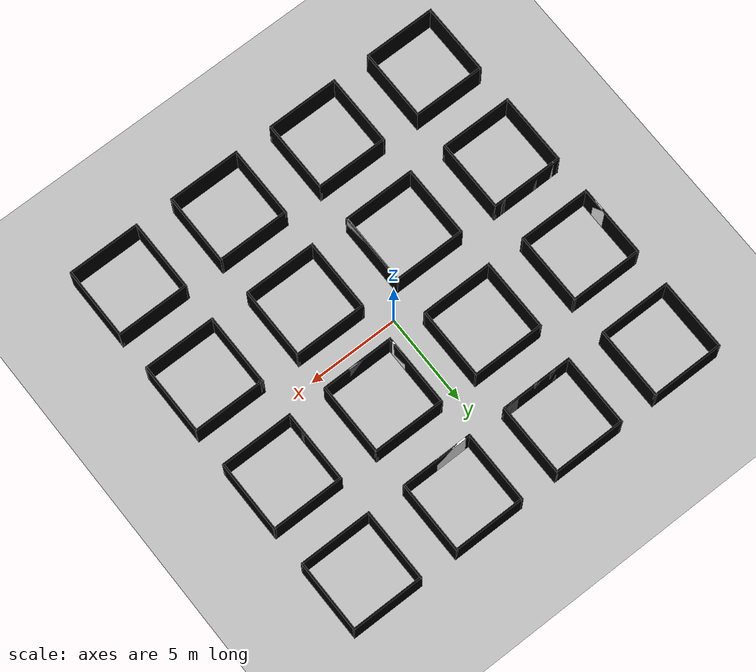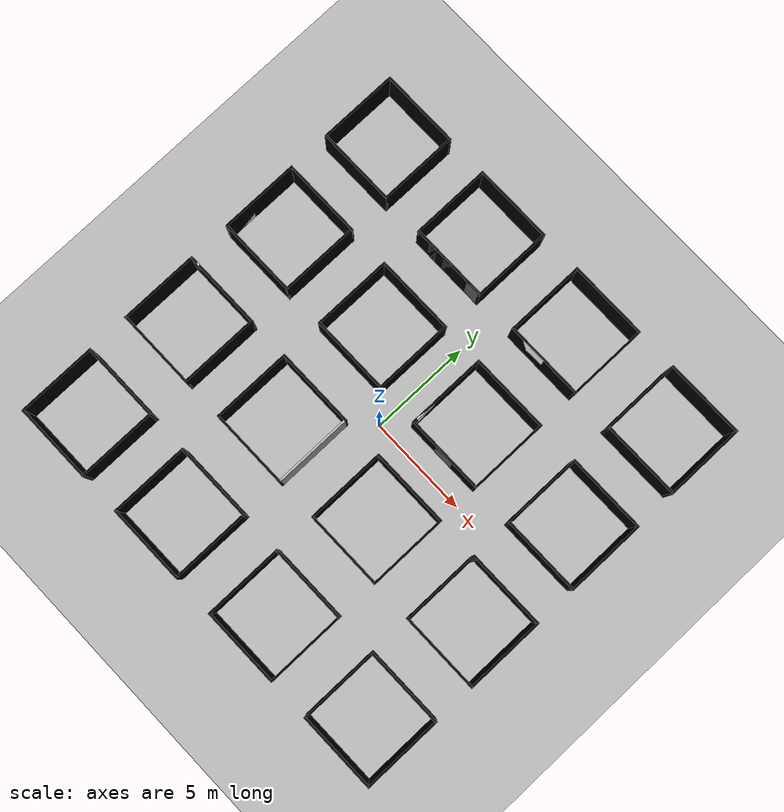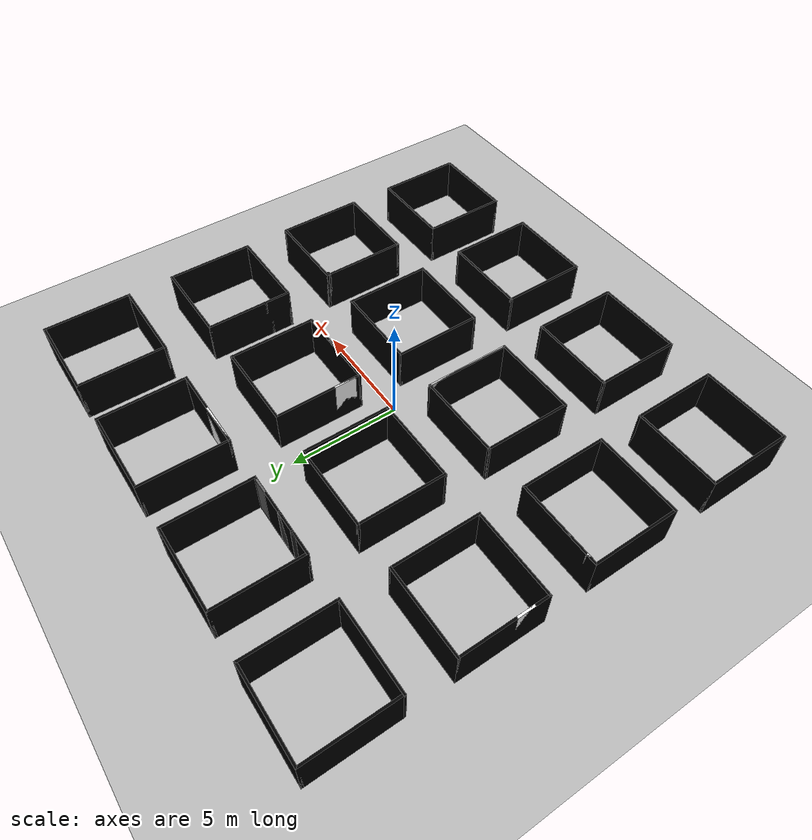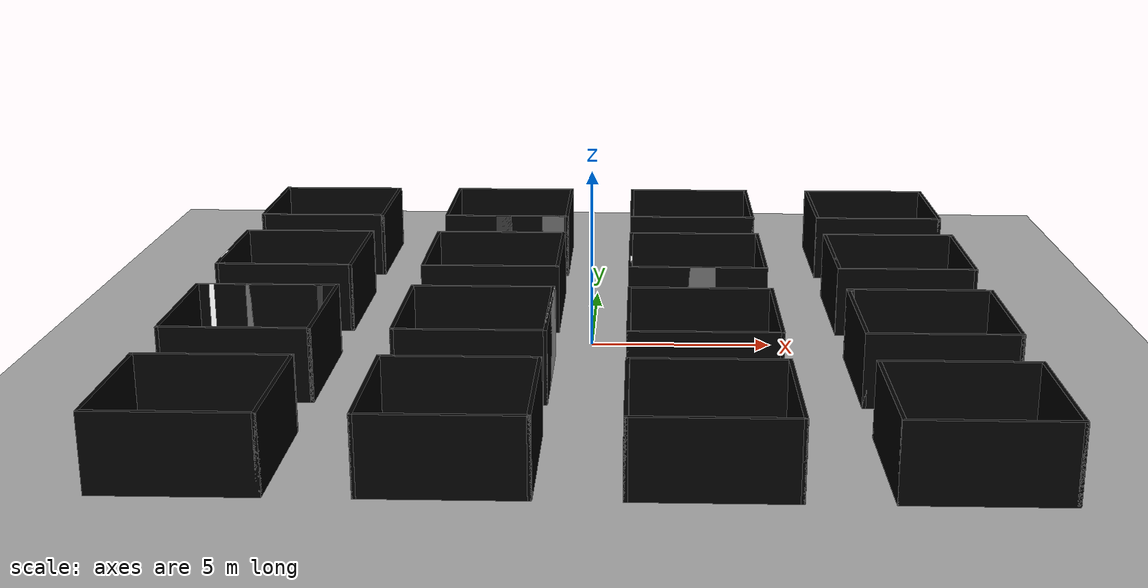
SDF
<?xml version="1.0" ?>
<sdf version="1.9">
  <world name="corridors_intensities">
    <physics name="1ms" type="ignored">
      <max_step_size>0.001</max_step_size>
      <real_time_factor>1.0</real_time_factor>
    </physics>
    <scene>
      <ambient>0.4 0.4 0.4 1</ambient>
      <background>0.7 0.7 0.7 1</background>
      <shadows>true</shadows>
    </scene>
    <model name="ground_plane">
      <static>true</static>
      <link name="link">
        <collision name="collision">
          <geometry>
            <plane>
              <normal>0 0 1</normal>
              <size>100 100</size>
            </plane>
          </geometry>
          <surface>
            <contact>
              <collide_bitmask>65535</collide_bitmask>
              <ode />
            </contact>
            <friction>
              <ode>
                <mu>100</mu>
                <mu2>50</mu2>
              </ode>
              <torsional>
                <ode />
              </torsional>
            </friction>
            <bounce />
          </surface>
          <max_contacts>10</max_contacts>
        </collision>
        <visual name="visual">
          <cast_shadows>false</cast_shadows>
          <geometry>
            <plane>
              <normal>0 0 1</normal>
              <size>100 100</size>
            </plane>
          </geometry>
          <material>
            <ambient>0.7 0.7 0.7 1</ambient>
            <diffuse>0.7 0.7 0.7 1</diffuse>
            <specular>0.1 0.1 0.1 1</specular>
          </material>
        </visual>
        <self_collide>false</self_collide>
        <enable_wind>false</enable_wind>
        <kinematic>false</kinematic>
      </link>
    </model>
    <light name="sun" type="directional">
      <cast_shadows>true</cast_shadows>
      <pose>0 0 10 0 0 0</pose>
      <diffuse>0.8 0.8 0.8 1</diffuse>
      <specular>0.2 0.2 0.2 1</specular>
      <attenuation>
        <range>1000</range>
        <constant>0.9</constant>
        <linear>0.01</linear>
        <quadratic>0.001</quadratic>
      </attenuation>
      <direction>-0.5 0.1 -0.9</direction>
    </light>
    <model name="wall_D_3_1">
      <static>true</static>
      <pose>3 1.05 1 0 0 0</pose>
      <link name="link">
        <collision name="wall">
          <geometry>
            <box>
              <size>4.0 0.10 2</size>
            </box>
          </geometry>
        </collision>
        <visual name="vis">
          <geometry>
            <box>
              <size>4.0 0.10 2</size>
            </box>
          </geometry>
          <material>
            <ambient>0.0 0.0 0.0 1</ambient>
            <diffuse>0.0 0.0 0.0 1</diffuse>
          </material>
        </visual>
      </link>
    </model>
    <model name="wall_I_3_5">
      <static>true</static>
      <pose>3 4.95 1 0 0 0</pose>
      <link name="link">
        <collision name="wall">
          <geometry>
            <box>
              <size>4.0 0.10 2</size>
            </box>
          </geometry>
        </collision>
        <visual name="vis">
          <geometry>
            <box>
              <size>4.0 0.10 2</size>
            </box>
          </geometry>
          <material>
            <ambient>0.0 0.0 0.0 1</ambient>
            <diffuse>0.0 0.0 0.0 1</diffuse>
          </material>
        </visual>
      </link>
    </model>
    <model name="wall_A_5_3">
      <static>true</static>
      <pose>4.95 3 1 0 0 0</pose>
      <link name="link">
        <collision name="wall">
          <geometry>
            <box>
              <size>0.10 4.0 2</size>
            </box>
          </geometry>
        </collision>
        <visual name="vis">
          <geometry>
            <box>
              <size>0.10 4.0 2</size>
            </box>
          </geometry>
          <material>
            <ambient>0.0 0.0 0.0 1</ambient>
            <diffuse>0.0 0.0 0.0 1</diffuse>
          </material>
        </visual>
      </link>
    </model>
    <model name="wall_B_1_3">
      <static>true</static>
      <pose>1.05 3 1 0 0 0</pose>
      <link name="link">
        <collision name="wall">
          <geometry>
            <box>
              <size>0.10 4.0 2</size>
            </box>
          </geometry>
        </collision>
        <visual name="vis">
          <geometry>
            <box>
              <size>0.10 4.0 2</size>
            </box>
          </geometry>
          <material>
            <ambient>0.0 0.0 0.0 1</ambient>
            <diffuse>0.0 0.0 0.0 1</diffuse>
          </material>
        </visual>
      </link>
    </model>
    <model name="wall_D_3_-5">
      <static>true</static>
      <pose>3 -4.95 1 0 0 0</pose>
      <link name="link">
        <collision name="wall">
          <geometry>
            <box>
              <size>4.0 0.10 2</size>
            </box>
          </geometry>
        </collision>
        <visual name="vis">
          <geometry>
            <box>
              <size>4.0 0.10 2</size>
            </box>
          </geometry>
          <material>
            <ambient>0.0 0.0 0.0 1</ambient>
            <diffuse>0.0 0.0 0.0 1</diffuse>
          </material>
        </visual>
      </link>
    </model>
    <model name="wall_I_3_-1">
      <static>true</static>
      <pose>3 -1.05 1 0 0 0</pose>
      <link name="link">
        <collision name="wall">
          <geometry>
            <box>
              <size>4.0 0.10 2</size>
            </box>
          </geometry>
        </collision>
        <visual name="vis">
          <geometry>
            <box>
              <size>4.0 0.10 2</size>
            </box>
          </geometry>
          <material>
            <ambient>0.0 0.0 0.0 1</ambient>
            <diffuse>0.0 0.0 0.0 1</diffuse>
          </material>
        </visual>
      </link>
    </model>
    <model name="wall_A_5_-3">
      <static>true</static>
      <pose>4.95 -3 1 0 0 0</pose>
      <link name="link">
        <collision name="wall">
          <geometry>
            <box>
              <size>0.10 4.0 2</size>
            </box>
          </geometry>
        </collision>
        <visual name="vis">
          <geometry>
            <box>
              <size>0.10 4.0 2</size>
            </box>
          </geometry>
          <material>
            <ambient>0.0 0.0 0.0 1</ambient>
            <diffuse>0.0 0.0 0.0 1</diffuse>
          </material>
        </visual>
      </link>
    </model>
    <model name="wall_B_1_-3">
      <static>true</static>
      <pose>1.05 -3 1 0 0 0</pose>
      <link name="link">
        <collision name="wall">
          <geometry>
            <box>
              <size>0.10 4.0 2</size>
            </box>
          </geometry>
        </collision>
        <visual name="vis">
          <geometry>
            <box>
              <size>0.10 4.0 2</size>
            </box>
          </geometry>
          <material>
            <ambient>0.0 0.0 0.0 1</ambient>
            <diffuse>0.0 0.0 0.0 1</diffuse>
          </material>
        </visual>
      </link>
    </model>
    <model name="wall_D_-3_-5">
      <static>true</static>
      <pose>-3 -4.95 1 0 0 0</pose>
      <link name="link">
        <collision name="wall">
          <geometry>
            <box>
              <size>4.0 0.10 2</size>
            </box>
          </geometry>
        </collision>
        <visual name="vis">
          <geometry>
            <box>
              <size>4.0 0.10 2</size>
            </box>
          </geometry>
          <material>
            <ambient>0.0 0.0 0.0 1</ambient>
            <diffuse>0.0 0.0 0.0 1</diffuse>
          </material>
        </visual>
      </link>
    </model>
    <model name="wall_I_-3_-1">
      <static>true</static>
      <pose>-3 -1.05 1 0 0 0</pose>
      <link name="link">
        <collision name="wall">
          <geometry>
            <box>
              <size>4.0 0.10 2</size>
            </box>
          </geometry>
        </collision>
        <visual name="vis">
          <geometry>
            <box>
              <size>4.0 0.10 2</size>
            </box>
          </geometry>
          <material>
            <ambient>0.0 0.0 0.0 1</ambient>
            <diffuse>0.0 0.0 0.0 1</diffuse>
          </material>
        </visual>
      </link>
    </model>
    <model name="wall_A_-5_-3">
      <static>true</static>
      <pose>-4.95 -3 1 0 0 0</pose>
      <link name="link">
        <collision name="wall">
          <geometry>
            <box>
              <size>0.10 4.0 2</size>
            </box>
          </geometry>
        </collision>
        <visual name="vis">
          <geometry>
            <box>
              <size>0.10 4.0 2</size>
            </box>
          </geometry>
          <material>
            <ambient>0.0 0.0 0.0 1</ambient>
            <diffuse>0.0 0.0 0.0 1</diffuse>
          </material>
        </visual>
      </link>
    </model>
    <model name="wall_B_-1_-3">
      <static>true</static>
      <pose>-1.05 -3 1 0 0 0</pose>
      <link name="link">
        <collision name="wall">
          <geometry>
            <box>
              <size>0.10 4.0 2</size>
            </box>
          </geometry>
        </collision>
        <visual name="vis">
          <geometry>
            <box>
              <size>0.10 4.0 2</size>
            </box>
          </geometry>
          <material>
            <ambient>0.0 0.0 0.0 1</ambient>
            <diffuse>0.0 0.0 0.0 1</diffuse>
          </material>
        </visual>
      </link>
    </model>
    <model name="wall_D_-3_5">
      <static>true</static>
      <pose>-3 4.95 1 0 0 0</pose>
      <link name="link">
        <collision name="wall">
          <geometry>
            <box>
              <size>4.0 0.10 2</size>
            </box>
          </geometry>
        </collision>
        <visual name="vis">
          <geometry>
            <box>
              <size>4.0 0.10 2</size>
            </box>
          </geometry>
          <material>
            <ambient>0.0 0.0 0.0 1</ambient>
            <diffuse>0.0 0.0 0.0 1</diffuse>
          </material>
        </visual>
      </link>
    </model>
    <model name="wall_I_-3_1">
      <static>true</static>
      <pose>-3 1.05 1 0 0 0</pose>
      <link name="link">
        <collision name="wall">
          <geometry>
            <box>
              <size>4.0 0.10 2</size>
            </box>
          </geometry>
        </collision>
        <visual name="vis">
          <geometry>
            <box>
              <size>4.0 0.10 2</size>
            </box>
          </geometry>
          <material>
            <ambient>0.0 0.0 0.0 1</ambient>
            <diffuse>0.0 0.0 0.0 1</diffuse>
          </material>
        </visual>
      </link>
    </model>
    <model name="wall_A_-5_3">
      <static>true</static>
      <pose>-4.95 3 1 0 0 0</pose>
      <link name="link">
        <collision name="wall">
          <geometry>
            <box>
              <size>0.10 4.0 2</size>
            </box>
          </geometry>
        </collision>
        <visual name="vis">
          <geometry>
            <box>
              <size>0.10 4.0 2</size>
            </box>
          </geometry>
          <material>
            <ambient>0.0 0.0 0.0 1</ambient>
            <diffuse>0.0 0.0 0.0 1</diffuse>
          </material>
        </visual>
      </link>
    </model>
    <model name="wall_B_-1_3">
      <static>true</static>
      <pose>-1.05 3 1 0 0 0</pose>
      <link name="link">
        <collision name="wall">
          <geometry>
            <box>
              <size>0.10 4.0 2</size>
            </box>
          </geometry>
        </collision>
        <visual name="vis">
          <geometry>
            <box>
              <size>0.10 4.0 2</size>
            </box>
          </geometry>
          <material>
            <ambient>0.0 0.0 0.0 1</ambient>
            <diffuse>0.0 0.0 0.0 1</diffuse>
          </material>
        </visual>
      </link>
    </model>
    <model name="wall_D_-3_7">
      <static>true</static>
      <pose>-3 7.05 1 0 0 0</pose>
      <link name="link">
        <collision name="wall">
          <geometry>
            <box>
              <size>4.0 0.10 2</size>
            </box>
          </geometry>
        </collision>
        <visual name="vis">
          <geometry>
            <box>
              <size>4.0 0.10 2</size>
            </box>
          </geometry>
          <material>
            <ambient>0.0 0.0 0.0 1</ambient>
            <diffuse>0.0 0.0 0.0 1</diffuse>
          </material>
        </visual>
      </link>
    </model>
    <model name="wall_I_-3_11">
      <static>true</static>
      <pose>-3 10.95 1 0 0 0</pose>
      <link name="link">
        <collision name="wall">
          <geometry>
            <box>
              <size>4.0 0.10 2</size>
            </box>
          </geometry>
        </collision>
        <visual name="vis">
          <geometry>
            <box>
              <size>4.0 0.10 2</size>
            </box>
          </geometry>
          <material>
            <ambient>0.0 0.0 0.0 1</ambient>
            <diffuse>0.0 0.0 0.0 1</diffuse>
          </material>
        </visual>
      </link>
    </model>
    <model name="wall_A_-5_9">
      <static>true</static>
      <pose>-4.95 9 1 0 0 0</pose>
      <link name="link">
        <collision name="wall">
          <geometry>
            <box>
              <size>0.10 4.0 2</size>
            </box>
          </geometry>
        </collision>
        <visual name="vis">
          <geometry>
            <box>
              <size>0.10 4.0 2</size>
            </box>
          </geometry>
          <material>
            <ambient>0.0 0.0 0.0 1</ambient>
            <diffuse>0.0 0.0 0.0 1</diffuse>
          </material>
        </visual>
      </link>
    </model>
    <model name="wall_B_-1_9">
      <static>true</static>
      <pose>-1.05 9 1 0 0 0</pose>
      <link name="link">
        <collision name="wall">
          <geometry>
            <box>
              <size>0.10 4.0 2</size>
            </box>
          </geometry>
        </collision>
        <visual name="vis">
          <geometry>
            <box>
              <size>0.10 4.0 2</size>
            </box>
          </geometry>
          <material>
            <ambient>0.0 0.0 0.0 1</ambient>
            <diffuse>0.0 0.0 0.0 1</diffuse>
          </material>
        </visual>
      </link>
    </model>
    <model name="wall_D_3_7">
      <static>true</static>
      <pose>3 7.05 1 0 0 0</pose>
      <link name="link">
        <collision name="wall">
          <geometry>
            <box>
              <size>4.0 0.10 2</size>
            </box>
          </geometry>
        </collision>
        <visual name="vis">
          <geometry>
            <box>
              <size>4.0 0.10 2</size>
            </box>
          </geometry>
          <material>
            <ambient>0.0 0.0 0.0 1</ambient>
            <diffuse>0.0 0.0 0.0 1</diffuse>
          </material>
        </visual>
      </link>
    </model>
    <model name="wall_I_3_11">
      <static>true</static>
      <pose>3 10.95 1 0 0 0</pose>
      <link name="link">
        <collision name="wall">
          <geometry>
            <box>
              <size>4.0 0.10 2</size>
            </box>
          </geometry>
        </collision>
        <visual name="vis">
          <geometry>
            <box>
              <size>4.0 0.10 2</size>
            </box>
          </geometry>
          <material>
            <ambient>0.0 0.0 0.0 1</ambient>
            <diffuse>0.0 0.0 0.0 1</diffuse>
          </material>
        </visual>
      </link>
    </model>
    <model name="wall_A_5_9">
      <static>true</static>
      <pose>4.95 9 1 0 0 0</pose>
      <link name="link">
        <collision name="wall">
          <geometry>
            <box>
              <size>0.10 4.0 2</size>
            </box>
          </geometry>
        </collision>
        <visual name="vis">
          <geometry>
            <box>
              <size>0.10 4.0 2</size>
            </box>
          </geometry>
          <material>
            <ambient>0.0 0.0 0.0 1</ambient>
            <diffuse>0.0 0.0 0.0 1</diffuse>
          </material>
        </visual>
      </link>
    </model>
    <model name="wall_B_1_9">
      <static>true</static>
      <pose>1.05 9 1 0 0 0</pose>
      <link name="link">
        <collision name="wall">
          <geometry>
            <box>
              <size>0.10 4.0 2</size>
            </box>
          </geometry>
        </collision>
        <visual name="vis">
          <geometry>
            <box>
              <size>0.10 4.0 2</size>
            </box>
          </geometry>
          <material>
            <ambient>0.0 0.0 0.0 1</ambient>
            <diffuse>0.0 0.0 0.0 1</diffuse>
          </material>
        </visual>
      </link>
    </model>
    <model name="wall_D_9_7">
      <static>true</static>
      <pose>9 7.05 1 0 0 0</pose>
      <link name="link">
        <collision name="wall">
          <geometry>
            <box>
              <size>4.0 0.10 2</size>
            </box>
          </geometry>
        </collision>
        <visual name="vis">
          <geometry>
            <box>
              <size>4.0 0.10 2</size>
            </box>
          </geometry>
          <material>
            <ambient>0.0 0.0 0.0 1</ambient>
            <diffuse>0.0 0.0 0.0 1</diffuse>
          </material>
        </visual>
      </link>
    </model>
    <model name="wall_I_9_11">
      <static>true</static>
      <pose>9 10.95 1 0 0 0</pose>
      <link name="link">
        <collision name="wall">
          <geometry>
            <box>
              <size>4.0 0.10 2</size>
            </box>
          </geometry>
        </collision>
        <visual name="vis">
          <geometry>
            <box>
              <size>4.0 0.10 2</size>
            </box>
          </geometry>
          <material>
            <ambient>0.0 0.0 0.0 1</ambient>
            <diffuse>0.0 0.0 0.0 1</diffuse>
          </material>
        </visual>
      </link>
    </model>
    <model name="wall_A_11_9">
      <static>true</static>
      <pose>10.95 9 1 0 0 0</pose>
      <link name="link">
        <collision name="wall">
          <geometry>
            <box>
              <size>0.10 4.0 2</size>
            </box>
          </geometry>
        </collision>
        <visual name="vis">
          <geometry>
            <box>
              <size>0.10 4.0 2</size>
            </box>
          </geometry>
          <material>
            <ambient>0.0 0.0 0.0 1</ambient>
            <diffuse>0.0 0.0 0.0 1</diffuse>
          </material>
        </visual>
      </link>
    </model>
    <model name="wall_B_7_9">
      <static>true</static>
      <pose>7.05 9 1 0 0 0</pose>
      <link name="link">
        <collision name="wall">
          <geometry>
            <box>
              <size>0.10 4.0 2</size>
            </box>
          </geometry>
        </collision>
        <visual name="vis">
          <geometry>
            <box>
              <size>0.10 4.0 2</size>
            </box>
          </geometry>
          <material>
            <ambient>0.0 0.0 0.0 1</ambient>
            <diffuse>0.0 0.0 0.0 1</diffuse>
          </material>
        </visual>
      </link>
    </model>
    <model name="wall_D_9_1">
      <static>true</static>
      <pose>9 1.05 1 0 0 0</pose>
      <link name="link">
        <collision name="wall">
          <geometry>
            <box>
              <size>4.0 0.10 2</size>
            </box>
          </geometry>
        </collision>
        <visual name="vis">
          <geometry>
            <box>
              <size>4.0 0.10 2</size>
            </box>
          </geometry>
          <material>
            <ambient>0.0 0.0 0.0 1</ambient>
            <diffuse>0.0 0.0 0.0 1</diffuse>
          </material>
        </visual>
      </link>
    </model>
    <model name="wall_I_9_5">
      <static>true</static>
      <pose>9 4.95 1 0 0 0</pose>
      <link name="link">
        <collision name="wall">
          <geometry>
            <box>
              <size>4.0 0.10 2</size>
            </box>
          </geometry>
        </collision>
        <visual name="vis">
          <geometry>
            <box>
              <size>4.0 0.10 2</size>
            </box>
          </geometry>
          <material>
            <ambient>0.0 0.0 0.0 1</ambient>
            <diffuse>0.0 0.0 0.0 1</diffuse>
          </material>
        </visual>
      </link>
    </model>
    <model name="wall_A_11_3">
      <static>true</static>
      <pose>10.95 3 1 0 0 0</pose>
      <link name="link">
        <collision name="wall">
          <geometry>
            <box>
              <size>0.10 4.0 2</size>
            </box>
          </geometry>
        </collision>
        <visual name="vis">
          <geometry>
            <box>
              <size>0.10 4.0 2</size>
            </box>
          </geometry>
          <material>
            <ambient>0.0 0.0 0.0 1</ambient>
            <diffuse>0.0 0.0 0.0 1</diffuse>
          </material>
        </visual>
      </link>
    </model>
    <model name="wall_B_7_3">
      <static>true</static>
      <pose>7.05 3 1 0 0 0</pose>
      <link name="link">
        <collision name="wall">
          <geometry>
            <box>
              <size>0.10 4.0 2</size>
            </box>
          </geometry>
        </collision>
        <visual name="vis">
          <geometry>
            <box>
              <size>0.10 4.0 2</size>
            </box>
          </geometry>
          <material>
            <ambient>0.0 0.0 0.0 1</ambient>
            <diffuse>0.0 0.0 0.0 1</diffuse>
          </material>
        </visual>
      </link>
    </model>
    <model name="wall_D_9_-5">
      <static>true</static>
      <pose>9 -4.95 1 0 0 0</pose>
      <link name="link">
        <collision name="wall">
          <geometry>
            <box>
              <size>4.0 0.10 2</size>
            </box>
          </geometry>
        </collision>
        <visual name="vis">
          <geometry>
            <box>
              <size>4.0 0.10 2</size>
            </box>
          </geometry>
          <material>
            <ambient>0.0 0.0 0.0 1</ambient>
            <diffuse>0.0 0.0 0.0 1</diffuse>
          </material>
        </visual>
      </link>
    </model>
    <model name="wall_I_9_-1">
      <static>true</static>
      <pose>9 -1.05 1 0 0 0</pose>
      <link name="link">
        <collision name="wall">
          <geometry>
            <box>
              <size>4.0 0.10 2</size>
            </box>
          </geometry>
        </collision>
        <visual name="vis">
          <geometry>
            <box>
              <size>4.0 0.10 2</size>
            </box>
          </geometry>
          <material>
            <ambient>0.0 0.0 0.0 1</ambient>
            <diffuse>0.0 0.0 0.0 1</diffuse>
          </material>
        </visual>
      </link>
    </model>
    <model name="wall_A_11_-3">
      <static>true</static>
      <pose>10.95 -3 1 0 0 0</pose>
      <link name="link">
        <collision name="wall">
          <geometry>
            <box>
              <size>0.10 4.0 2</size>
            </box>
          </geometry>
        </collision>
        <visual name="vis">
          <geometry>
            <box>
              <size>0.10 4.0 2</size>
            </box>
          </geometry>
          <material>
            <ambient>0.0 0.0 0.0 1</ambient>
            <diffuse>0.0 0.0 0.0 1</diffuse>
          </material>
        </visual>
      </link>
    </model>
    <model name="wall_B_7_-3">
      <static>true</static>
      <pose>7.05 -3 1 0 0 0</pose>
      <link name="link">
        <collision name="wall">
          <geometry>
            <box>
              <size>0.10 4.0 2</size>
            </box>
          </geometry>
        </collision>
        <visual name="vis">
          <geometry>
            <box>
              <size>0.10 4.0 2</size>
            </box>
          </geometry>
          <material>
            <ambient>0.0 0.0 0.0 1</ambient>
            <diffuse>0.0 0.0 0.0 1</diffuse>
          </material>
        </visual>
      </link>
    </model>
    <model name="wall_D_9_-11">
      <static>true</static>
      <pose>9 -10.95 1 0 0 0</pose>
      <link name="link">
        <collision name="wall">
          <geometry>
            <box>
              <size>4.0 0.10 2</size>
            </box>
          </geometry>
        </collision>
        <visual name="vis">
          <geometry>
            <box>
              <size>4.0 0.10 2</size>
            </box>
          </geometry>
          <material>
            <ambient>0.0 0.0 0.0 1</ambient>
            <diffuse>0.0 0.0 0.0 1</diffuse>
          </material>
        </visual>
      </link>
    </model>
    <model name="wall_I_9_-7">
      <static>true</static>
      <pose>9 -7.05 1 0 0 0</pose>
      <link name="link">
        <collision name="wall">
          <geometry>
            <box>
              <size>4.0 0.10 2</size>
            </box>
          </geometry>
        </collision>
        <visual name="vis">
          <geometry>
            <box>
              <size>4.0 0.10 2</size>
            </box>
          </geometry>
          <material>
            <ambient>0.0 0.0 0.0 1</ambient>
            <diffuse>0.0 0.0 0.0 1</diffuse>
          </material>
        </visual>
      </link>
    </model>
    <model name="wall_A_11_-9">
      <static>true</static>
      <pose>10.95 -9 1 0 0 0</pose>
      <link name="link">
        <collision name="wall">
          <geometry>
            <box>
              <size>0.10 4.0 2</size>
            </box>
          </geometry>
        </collision>
        <visual name="vis">
          <geometry>
            <box>
              <size>0.10 4.0 2</size>
            </box>
          </geometry>
          <material>
            <ambient>0.0 0.0 0.0 1</ambient>
            <diffuse>0.0 0.0 0.0 1</diffuse>
          </material>
        </visual>
      </link>
    </model>
    <model name="wall_B_7_-9">
      <static>true</static>
      <pose>7.05 -9 1 0 0 0</pose>
      <link name="link">
        <collision name="wall">
          <geometry>
            <box>
              <size>0.10 4.0 2</size>
            </box>
          </geometry>
        </collision>
        <visual name="vis">
          <geometry>
            <box>
              <size>0.10 4.0 2</size>
            </box>
          </geometry>
          <material>
            <ambient>0.0 0.0 0.0 1</ambient>
            <diffuse>0.0 0.0 0.0 1</diffuse>
          </material>
        </visual>
      </link>
    </model>
    <model name="wall_D_3_-11">
      <static>true</static>
      <pose>3 -10.95 1 0 0 0</pose>
      <link name="link">
        <collision name="wall">
          <geometry>
            <box>
              <size>4.0 0.10 2</size>
            </box>
          </geometry>
        </collision>
        <visual name="vis">
          <geometry>
            <box>
              <size>4.0 0.10 2</size>
            </box>
          </geometry>
          <material>
            <ambient>0.0 0.0 0.0 1</ambient>
            <diffuse>0.0 0.0 0.0 1</diffuse>
          </material>
        </visual>
      </link>
    </model>
    <model name="wall_I_3_-7">
      <static>true</static>
      <pose>3 -7.05 1 0 0 0</pose>
      <link name="link">
        <collision name="wall">
          <geometry>
            <box>
              <size>4.0 0.10 2</size>
            </box>
          </geometry>
        </collision>
        <visual name="vis">
          <geometry>
            <box>
              <size>4.0 0.10 2</size>
            </box>
          </geometry>
          <material>
            <ambient>0.0 0.0 0.0 1</ambient>
            <diffuse>0.0 0.0 0.0 1</diffuse>
          </material>
        </visual>
      </link>
    </model>
    <model name="wall_A_5_-9">
      <static>true</static>
      <pose>4.95 -9 1 0 0 0</pose>
      <link name="link">
        <collision name="wall">
          <geometry>
            <box>
              <size>0.10 4.0 2</size>
            </box>
          </geometry>
        </collision>
        <visual name="vis">
          <geometry>
            <box>
              <size>0.10 4.0 2</size>
            </box>
          </geometry>
          <material>
            <ambient>0.0 0.0 0.0 1</ambient>
            <diffuse>0.0 0.0 0.0 1</diffuse>
          </material>
        </visual>
      </link>
    </model>
    <model name="wall_B_1_-9">
      <static>true</static>
      <pose>1.05 -9 1 0 0 0</pose>
      <link name="link">
        <collision name="wall">
          <geometry>
            <box>
              <size>0.10 4.0 2</size>
            </box>
          </geometry>
        </collision>
        <visual name="vis">
          <geometry>
            <box>
              <size>0.10 4.0 2</size>
            </box>
          </geometry>
          <material>
            <ambient>0.0 0.0 0.0 1</ambient>
            <diffuse>0.0 0.0 0.0 1</diffuse>
          </material>
        </visual>
      </link>
    </model>
    <model name="wall_D_-3_-11">
      <static>true</static>
      <pose>-3 -10.95 1 0 0 0</pose>
      <link name="link">
        <collision name="wall">
          <geometry>
            <box>
              <size>4.0 0.10 2</size>
            </box>
          </geometry>
        </collision>
        <visual name="vis">
          <geometry>
            <box>
              <size>4.0 0.10 2</size>
            </box>
          </geometry>
          <material>
            <ambient>0.0 0.0 0.0 1</ambient>
            <diffuse>0.0 0.0 0.0 1</diffuse>
          </material>
        </visual>
      </link>
    </model>
    <model name="wall_I_-3_-7">
      <static>true</static>
      <pose>-3 -7.05 1 0 0 0</pose>
      <link name="link">
        <collision name="wall">
          <geometry>
            <box>
              <size>4.0 0.10 2</size>
            </box>
          </geometry>
        </collision>
        <visual name="vis">
          <geometry>
            <box>
              <size>4.0 0.10 2</size>
            </box>
          </geometry>
          <material>
            <ambient>0.0 0.0 0.0 1</ambient>
            <diffuse>0.0 0.0 0.0 1</diffuse>
          </material>
        </visual>
      </link>
    </model>
    <model name="wall_A_-5_-9">
      <static>true</static>
      <pose>-4.95 -9 1 0 0 0</pose>
      <link name="link">
        <collision name="wall">
          <geometry>
            <box>
              <size>0.10 4.0 2</size>
            </box>
          </geometry>
        </collision>
        <visual name="vis">
          <geometry>
            <box>
              <size>0.10 4.0 2</size>
            </box>
          </geometry>
          <material>
            <ambient>0.0 0.0 0.0 1</ambient>
            <diffuse>0.0 0.0 0.0 1</diffuse>
          </material>
        </visual>
      </link>
    </model>
    <model name="wall_B_-1_-9">
      <static>true</static>
      <pose>-1.05 -9 1 0 0 0</pose>
      <link name="link">
        <collision name="wall">
          <geometry>
            <box>
              <size>0.10 4.0 2</size>
            </box>
          </geometry>
        </collision>
        <visual name="vis">
          <geometry>
            <box>
              <size>0.10 4.0 2</size>
            </box>
          </geometry>
          <material>
            <ambient>0.0 0.0 0.0 1</ambient>
            <diffuse>0.0 0.0 0.0 1</diffuse>
          </material>
        </visual>
      </link>
    </model>
    <model name="wall_D_-9_-11">
      <static>true</static>
      <pose>-9 -10.95 1 0 0 0</pose>
      <link name="link">
        <collision name="wall">
          <geometry>
            <box>
              <size>4.0 0.10 2</size>
            </box>
          </geometry>
        </collision>
        <visual name="vis">
          <geometry>
            <box>
              <size>4.0 0.10 2</size>
            </box>
          </geometry>
          <material>
            <ambient>0.0 0.0 0.0 1</ambient>
            <diffuse>0.0 0.0 0.0 1</diffuse>
          </material>
        </visual>
      </link>
    </model>
    <model name="wall_I_-9_-7">
      <static>true</static>
      <pose>-9 -7.05 1 0 0 0</pose>
      <link name="link">
        <collision name="wall">
          <geometry>
            <box>
              <size>4.0 0.10 2</size>
            </box>
          </geometry>
        </collision>
        <visual name="vis">
          <geometry>
            <box>
              <size>4.0 0.10 2</size>
            </box>
          </geometry>
          <material>
            <ambient>0.0 0.0 0.0 1</ambient>
            <diffuse>0.0 0.0 0.0 1</diffuse>
          </material>
        </visual>
      </link>
    </model>
    <model name="wall_A_-7_-9">
      <static>true</static>
      <pose>-7.05 -9 1 0 0 0</pose>
      <link name="link">
        <collision name="wall">
          <geometry>
            <box>
              <size>0.10 4.0 2</size>
            </box>
          </geometry>
        </collision>
        <visual name="vis">
          <geometry>
            <box>
              <size>0.10 4.0 2</size>
            </box>
          </geometry>
          <material>
            <ambient>0.0 0.0 0.0 1</ambient>
            <diffuse>0.0 0.0 0.0 1</diffuse>
          </material>
        </visual>
      </link>
    </model>
    <model name="wall_B_-11_-9">
      <static>true</static>
      <pose>-10.95 -9 1 0 0 0</pose>
      <link name="link">
        <collision name="wall">
          <geometry>
            <box>
              <size>0.10 4.0 2</size>
            </box>
          </geometry>
        </collision>
        <visual name="vis">
          <geometry>
            <box>
              <size>0.10 4.0 2</size>
            </box>
          </geometry>
          <material>
            <ambient>0.0 0.0 0.0 1</ambient>
            <diffuse>0.0 0.0 0.0 1</diffuse>
          </material>
        </visual>
      </link>
    </model>
    <model name="wall_D_-9_-5">
      <static>true</static>
      <pose>-9 -4.95 1 0 0 0</pose>
      <link name="link">
        <collision name="wall">
          <geometry>
            <box>
              <size>4.0 0.10 2</size>
            </box>
          </geometry>
        </collision>
        <visual name="vis">
          <geometry>
            <box>
              <size>4.0 0.10 2</size>
            </box>
          </geometry>
          <material>
            <ambient>0.0 0.0 0.0 1</ambient>
            <diffuse>0.0 0.0 0.0 1</diffuse>
          </material>
        </visual>
      </link>
    </model>
    <model name="wall_I_-9_-1">
      <static>true</static>
      <pose>-9 -1.05 1 0 0 0</pose>
      <link name="link">
        <collision name="wall">
          <geometry>
            <box>
              <size>4.0 0.10 2</size>
            </box>
          </geometry>
        </collision>
        <visual name="vis">
          <geometry>
            <box>
              <size>4.0 0.10 2</size>
            </box>
          </geometry>
          <material>
            <ambient>0.0 0.0 0.0 1</ambient>
            <diffuse>0.0 0.0 0.0 1</diffuse>
          </material>
        </visual>
      </link>
    </model>
    <model name="wall_A_-7_-3">
      <static>true</static>
      <pose>-7.05 -3 1 0 0 0</pose>
      <link name="link">
        <collision name="wall">
          <geometry>
            <box>
              <size>0.10 4.0 2</size>
            </box>
          </geometry>
        </collision>
        <visual name="vis">
          <geometry>
            <box>
              <size>0.10 4.0 2</size>
            </box>
          </geometry>
          <material>
            <ambient>0.0 0.0 0.0 1</ambient>
            <diffuse>0.0 0.0 0.0 1</diffuse>
          </material>
        </visual>
      </link>
    </model>
    <model name="wall_B_-11_-3">
      <static>true</static>
      <pose>-10.95 -3 1 0 0 0</pose>
      <link name="link">
        <collision name="wall">
          <geometry>
            <box>
              <size>0.10 4.0 2</size>
            </box>
          </geometry>
        </collision>
        <visual name="vis">
          <geometry>
            <box>
              <size>0.10 4.0 2</size>
            </box>
          </geometry>
          <material>
            <ambient>0.0 0.0 0.0 1</ambient>
            <diffuse>0.0 0.0 0.0 1</diffuse>
          </material>
        </visual>
      </link>
    </model>
    <model name="wall_D_-9_5">
      <static>true</static>
      <pose>-9 4.95 1 0 0 0</pose>
      <link name="link">
        <collision name="wall">
          <geometry>
            <box>
              <size>4.0 0.10 2</size>
            </box>
          </geometry>
        </collision>
        <visual name="vis">
          <geometry>
            <box>
              <size>4.0 0.10 2</size>
            </box>
          </geometry>
          <material>
            <ambient>0.0 0.0 0.0 1</ambient>
            <diffuse>0.0 0.0 0.0 1</diffuse>
          </material>
        </visual>
      </link>
    </model>
    <model name="wall_I_-9_1">
      <static>true</static>
      <pose>-9 1.05 1 0 0 0</pose>
      <link name="link">
        <collision name="wall">
          <geometry>
            <box>
              <size>4.0 0.10 2</size>
            </box>
          </geometry>
        </collision>
        <visual name="vis">
          <geometry>
            <box>
              <size>4.0 0.10 2</size>
            </box>
          </geometry>
          <material>
            <ambient>0.0 0.0 0.0 1</ambient>
            <diffuse>0.0 0.0 0.0 1</diffuse>
          </material>
        </visual>
      </link>
    </model>
    <model name="wall_A_-7_3">
      <static>true</static>
      <pose>-7.05 3 1 0 0 0</pose>
      <link name="link">
        <collision name="wall">
          <geometry>
            <box>
              <size>0.10 4.0 2</size>
            </box>
          </geometry>
        </collision>
        <visual name="vis">
          <geometry>
            <box>
              <size>0.10 4.0 2</size>
            </box>
          </geometry>
          <material>
            <ambient>0.0 0.0 0.0 1</ambient>
            <diffuse>0.0 0.0 0.0 1</diffuse>
          </material>
        </visual>
      </link>
    </model>
    <model name="wall_B_-11_3">
      <static>true</static>
      <pose>-10.95 3 1 0 0 0</pose>
      <link name="link">
        <collision name="wall">
          <geometry>
            <box>
              <size>0.10 4.0 2</size>
            </box>
          </geometry>
        </collision>
        <visual name="vis">
          <geometry>
            <box>
              <size>0.10 4.0 2</size>
            </box>
          </geometry>
          <material>
            <ambient>0.0 0.0 0.0 1</ambient>
            <diffuse>0.0 0.0 0.0 1</diffuse>
          </material>
        </visual>
      </link>
    </model>
    <model name="wall_D_-9_7">
      <static>true</static>
      <pose>-9 7.05 1 0 0 0</pose>
      <link name="link">
        <collision name="wall">
          <geometry>
            <box>
              <size>4.0 0.10 2</size>
            </box>
          </geometry>
        </collision>
        <visual name="vis">
          <geometry>
            <box>
              <size>4.0 0.10 2</size>
            </box>
          </geometry>
          <material>
            <ambient>0.0 0.0 0.0 1</ambient>
            <diffuse>0.0 0.0 0.0 1</diffuse>
          </material>
        </visual>
      </link>
    </model>
    <model name="wall_I_-9_11">
      <static>true</static>
      <pose>-9 10.95 1 0 0 0</pose>
      <link name="link">
        <collision name="wall">
          <geometry>
            <box>
              <size>4.0 0.10 2</size>
            </box>
          </geometry>
        </collision>
        <visual name="vis">
          <geometry>
            <box>
              <size>4.0 0.10 2</size>
            </box>
          </geometry>
          <material>
            <ambient>0.0 0.0 0.0 1</ambient>
            <diffuse>0.0 0.0 0.0 1</diffuse>
          </material>
        </visual>
      </link>
    </model>
    <model name="wall_A_-7_9">
      <static>true</static>
      <pose>-7.05 9 1 0 0 0</pose>
      <link name="link">
        <collision name="wall">
          <geometry>
            <box>
              <size>0.10 4.0 2</size>
            </box>
          </geometry>
        </collision>
        <visual name="vis">
          <geometry>
            <box>
              <size>0.10 4.0 2</size>
            </box>
          </geometry>
          <material>
            <ambient>0.0 0.0 0.0 1</ambient>
            <diffuse>0.0 0.0 0.0 1</diffuse>
          </material>
        </visual>
      </link>
    </model>
    <model name="wall_B_-11_9">
      <static>true</static>
      <pose>-10.95 9 1 0 0 0</pose>
      <link name="link">
        <collision name="wall">
          <geometry>
            <box>
              <size>0.10 4.0 2</size>
            </box>
          </geometry>
        </collision>
        <visual name="vis">
          <geometry>
            <box>
              <size>0.10 4.0 2</size>
            </box>
          </geometry>
          <material>
            <ambient>0.0 0.0 0.0 1</ambient>
            <diffuse>0.0 0.0 0.0 1</diffuse>
          </material>
        </visual>
      </link>
    </model>
    <model name="reflector_1_h_255">
      <static>true</static>
      <pose>1.05 1.75 1 0 0 0</pose>
      <link name="link">
        <collision name="wall">
          <laser_retro>255</laser_retro>
          <geometry>
            <box>
              <size>0.10 1.0 2</size>
            </box>
          </geometry>
        </collision>
        <visual name="vis">
          <geometry>
            <box>
              <size>0.10 1.0 2</size>
            </box>
          </geometry>
          <material>
            <ambient>1 1 1 1</ambient>
            <diffuse>1 1 1 1</diffuse>
            <specular>1 1 1 1</specular>
          </material>
        </visual>
      </link>
    </model>
    <model name="reflector_1_v_100">
      <static>true</static>
      <pose>3 1.05 1 0 0 0</pose>
      <link name="link">
        <collision name="wall">
          <laser_retro>100</laser_retro>
          <geometry>
            <box>
              <size>1.0 0.10 2</size>
            </box>
          </geometry>
        </collision>
        <visual name="vis">
          <geometry>
            <box>
              <size>1.0 0.10 2</size>
            </box>
          </geometry>
          <material>
            <ambient>0.39 0.39 0.39 1</ambient>
            <diffuse>0.39 0.39 0.39 1</diffuse>
            <specular>0.39 0.39 0.39 1</specular>
          </material>
        </visual>
      </link>
    </model>
    <model name="reflector_2_v_250">
      <static>true</static>
      <pose>3 -1.05 1 0 0 0</pose>
      <link name="link">
        <collision name="wall">
          <laser_retro>250</laser_retro>
          <geometry>
            <box>
              <size>0.0 0.10 2</size>
            </box>
          </geometry>
        </collision>
        <visual name="vis">
          <geometry>
            <box>
              <size>0.0 0.10 2</size>
            </box>
          </geometry>
          <material>
            <ambient>0.98 0.98 0.98 1</ambient>
            <diffuse>0.98 0.98 0.98 1</diffuse>
            <specular>0.98 0.98 0.98 1</specular>
          </material>
        </visual>
      </link>
    </model>
    <model name="reflector_2_c_150">
      <static>true</static>
      <pose>7.1 -1.1 1 0 0 0</pose>
      <link name="link">
        <collision name="wall">
          <laser_retro>150</laser_retro>
          <geometry>
            <box>
              <size>0.2 0.2 2</size>
            </box>
          </geometry>
        </collision>
        <visual name="vis">
          <geometry>
            <box>
              <size>0.2 0.2 2</size>
            </box>
          </geometry>
          <material>
            <ambient>0.08 0.08 0.08 1</ambient>
            <diffuse>0.08 0.08 0.08 1</diffuse>
            <specular>0.08 0.08 0.08 1</specular>
          </material>
        </visual>
      </link>
    </model>
    <model name="reflector_8_h_80">
      <static>true</static>
      <pose>7.05 2.1 1 0 0 0</pose>
      <link name="link">
        <collision name="wall">
          <laser_retro>80</laser_retro>
          <geometry>
            <box>
              <size>0.1 0.25 2</size>
            </box>
          </geometry>
        </collision>
        <visual name="vis">
          <geometry>
            <box>
              <size>0.1 0.25 2</size>
            </box>
          </geometry>
          <material>
            <ambient>0.31 0.31 0.31 1</ambient>
            <diffuse>0.31 0.31 0.31 1</diffuse>
            <specular>0.31 0.31 0.31 1</specular>
          </material>
        </visual>
      </link>
    </model>
    <model name="reflector_6_v_255">
      <static>true</static>
      <pose>2.15 7.05 1 0 0 0</pose>
      <link name="link">
        <collision name="wall">
          <laser_retro>255</laser_retro>
          <geometry>
            <box>
              <size>1.7 0.1 2</size>
            </box>
          </geometry>
        </collision>
        <visual name="vis">
          <geometry>
            <box>
              <size>1.7 0.1 2</size>
            </box>
          </geometry>
          <material>
            <ambient>1 1 1 1</ambient>
            <diffuse>1 1 1 1</diffuse>
            <specular>1 1 1 1</specular>
          </material>
        </visual>
      </link>
    </model>
    <model name="reflector_5_v_95">
      <static>true</static>
      <pose>-1.5 7.05 1 0 0 0</pose>
      <link name="link">
        <collision name="wall">
          <laser_retro>95</laser_retro>
          <geometry>
            <box>
              <size>0.7 0.1 2</size>
            </box>
          </geometry>
        </collision>
        <visual name="vis">
          <geometry>
            <box>
              <size>0.7 0.1 2</size>
            </box>
          </geometry>
          <material>
            <ambient>0.37 0.37 0.37 1</ambient>
            <diffuse>0.37 0.37 0.37 1</diffuse>
            <specular>0.37 0.37 0.37 1</specular>
          </material>
        </visual>
      </link>
    </model>
    <model name="reflector_5_v_50">
      <static>true</static>
      <pose>-3.1 7.05 1 0 0 0</pose>
      <link name="link">
        <collision name="wall">
          <laser_retro>50</laser_retro>
          <geometry>
            <box>
              <size>0.5 0.1 2</size>
            </box>
          </geometry>
        </collision>
        <visual name="vis">
          <geometry>
            <box>
              <size>0.5 0.1 2</size>
            </box>
          </geometry>
          <material>
            <ambient>0.19 0.19 0.19 1</ambient>
            <diffuse>0.19 0.19 0.19 1</diffuse>
            <specular>0.19 0.19 0.19 1</specular>
          </material>
        </visual>
      </link>
    </model>
    <model name="reflector_5_v_30">
      <static>true</static>
      <pose>-4.0 7.05 1 0 0 0</pose>
      <link name="link">
        <collision name="wall">
          <laser_retro>30</laser_retro>
          <geometry>
            <box>
              <size>0.4 0.1 2</size>
            </box>
          </geometry>
        </collision>
        <visual name="vis">
          <geometry>
            <box>
              <size>0.4 0.1 2</size>
            </box>
          </geometry>
          <material>
            <ambient>0.11 0.11 0.11 1</ambient>
            <diffuse>0.11 0.11 0.11 1</diffuse>
            <specular>0.11 0.11 0.11 1</specular>
          </material>
        </visual>
      </link>
    </model>
    <model name="reflector_3_h_180">
      <static>true</static>
      <pose>-1.05 -3 1 0 0 0</pose>
      <link name="link">
        <collision name="wall">
          <laser_retro>180</laser_retro>
          <geometry>
            <box>
              <size>0.1 3.8 2</size>
            </box>
          </geometry>
        </collision>
        <visual name="vis">
          <geometry>
            <box>
              <size>0.1 3.8 2</size>
            </box>
          </geometry>
          <material>
            <ambient>0.70 0.70 0.70 1</ambient>
            <diffuse>0.70 0.70 0.70 1</diffuse>
            <specular>0.70 0.70 0.70 1</specular>
          </material>
        </visual>
      </link>
    </model>
    <model name="reflector_15_h_250">
      <static>true</static>
      <pose>-10.95 2.1 1 0 0 0</pose>
      <link name="link">
        <collision name="wall">
          <laser_retro>250</laser_retro>
          <geometry>
            <box>
              <size>0.1 0.8 2</size>
            </box>
          </geometry>
        </collision>
        <visual name="vis">
          <geometry>
            <box>
              <size>0.1 0.8 2</size>
            </box>
          </geometry>
          <material>
            <ambient>0.98 0.98 0.98 1</ambient>
            <diffuse>0.98 0.98 0.98 1</diffuse>
            <specular>0.98 0.98 0.98 1</specular>
          </material>
        </visual>
      </link>
    </model>
    <model name="reflector_14_v_50">
      <static>true</static>
      <pose>-7.52 -1.05 1 0 0 0</pose>
      <link name="link">
        <collision name="wall">
          <laser_retro>50</laser_retro>
          <geometry>
            <box>
              <size>0.2 0.1 2</size>
            </box>
          </geometry>
        </collision>
        <visual name="vis">
          <geometry>
            <box>
              <size>0.2 0.1 2</size>
            </box>
          </geometry>
          <material>
            <ambient>0.19 0.19 0.19 1</ambient>
            <diffuse>0.19 0.19 0.19 1</diffuse>
            <specular>0.19 0.19 0.19 1</specular>
          </material>
        </visual>
      </link>
    </model>
    <model name="reflector_14_v_105">
      <static>true</static>
      <pose>-9.52 -1.05 1 0 0 0</pose>
      <link name="link">
        <collision name="wall">
          <laser_retro>105</laser_retro>
          <geometry>
            <box>
              <size>0.17 0.1 2</size>
            </box>
          </geometry>
        </collision>
        <visual name="vis">
          <geometry>
            <box>
              <size>0.17 0.1 2</size>
            </box>
          </geometry>
          <material>
            <ambient>0.41 0.41 0.41 1</ambient>
            <diffuse>0.41 0.41 0.41 1</diffuse>
            <specular>0.41 0.41 0.41 1</specular>
          </material>
        </visual>
      </link>
    </model>
    <model name="reflector_14_v_255">
      <static>true</static>
      <pose>-10.55 -1.05 1 0 0 0</pose>
      <link name="link">
        <collision name="wall">
          <laser_retro>255</laser_retro>
          <geometry>
            <box>
              <size>0.15 0.1 2</size>
            </box>
          </geometry>
        </collision>
        <visual name="vis">
          <geometry>
            <box>
              <size>0.15 0.1 2</size>
            </box>
          </geometry>
          <material>
            <ambient>1 1 1 1</ambient>
            <diffuse>1 1 1 1</diffuse>
            <specular>1 1 1 1</specular>
          </material>
        </visual>
      </link>
    </model>
    <gui>
      <camera name="user_camera">
        <pose>0.05 -0.05 7.2048 0 1.570796 0</pose>
        <view_controller>orbit</view_controller>
        <projection_type>orthographic</projection_type>
      </camera>
    </gui>
  </world>
</sdf>
